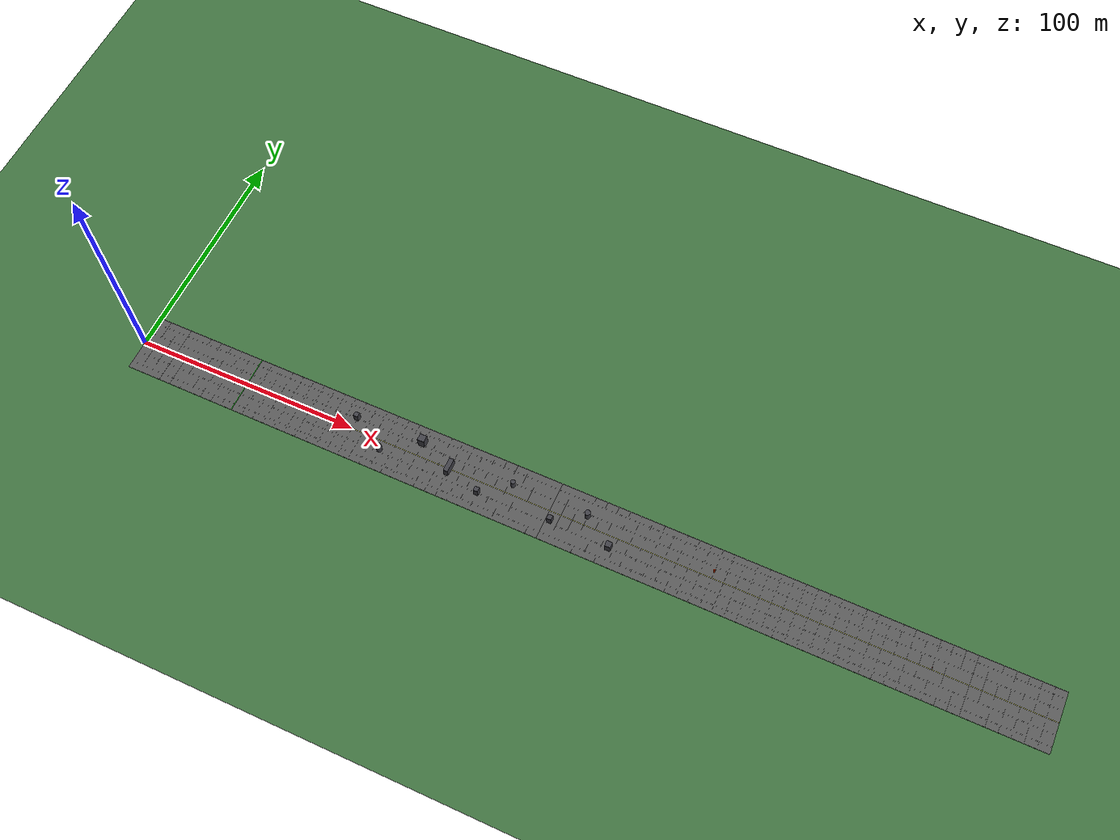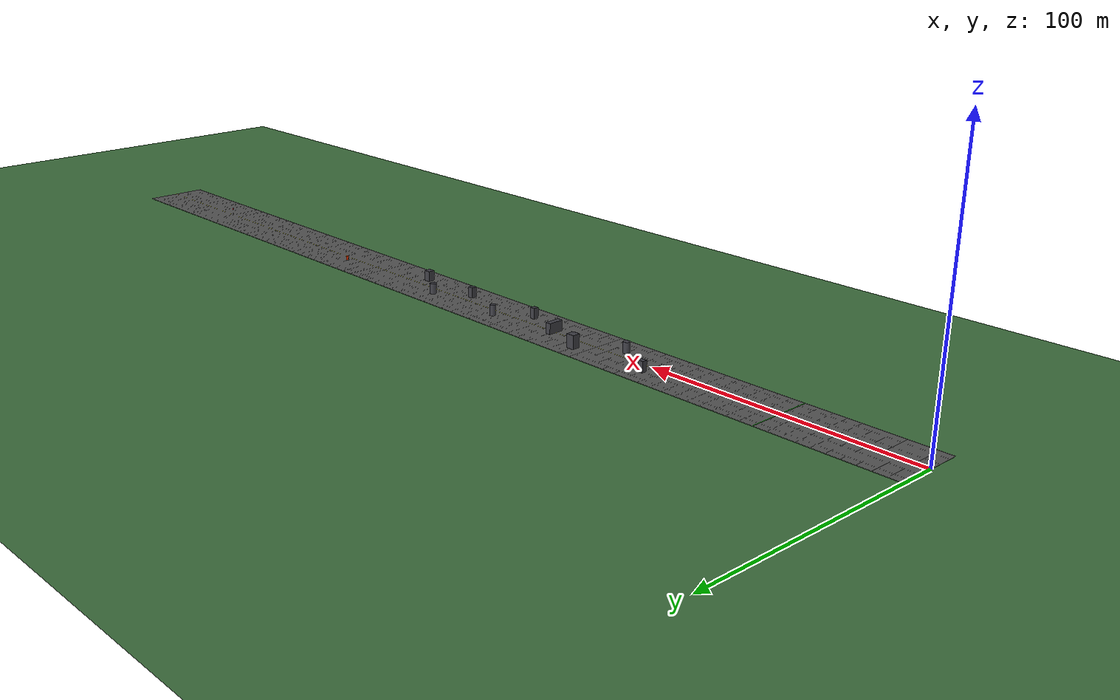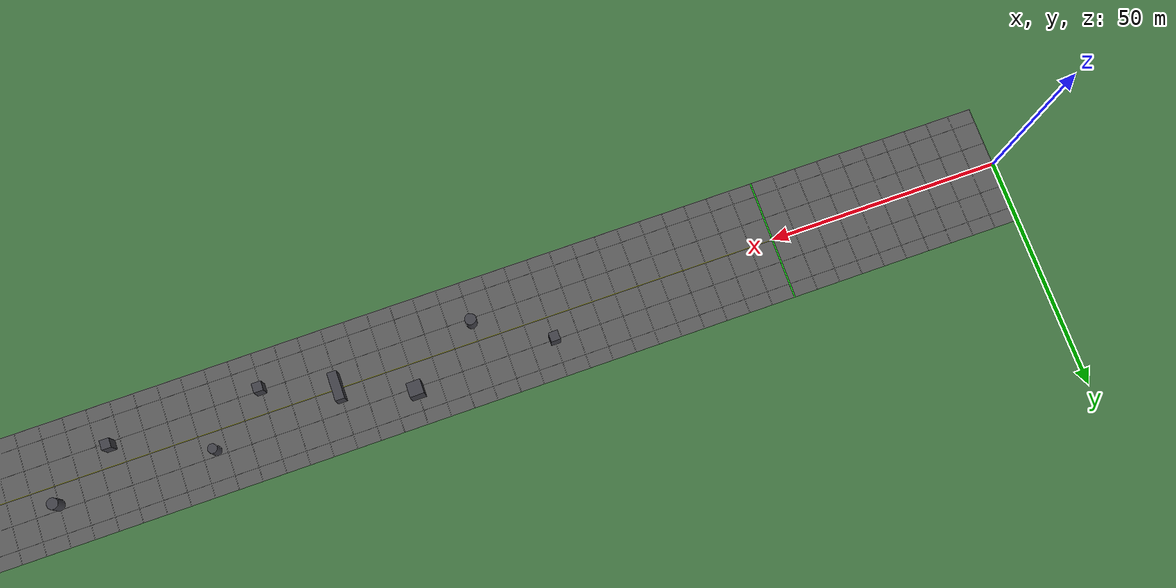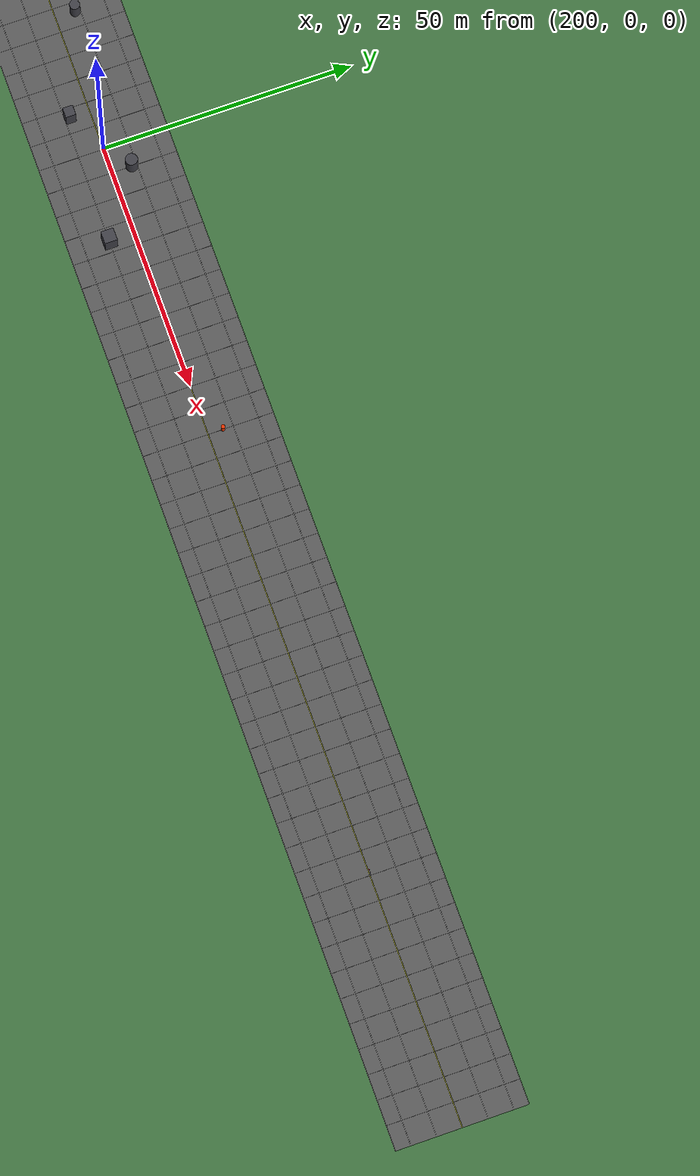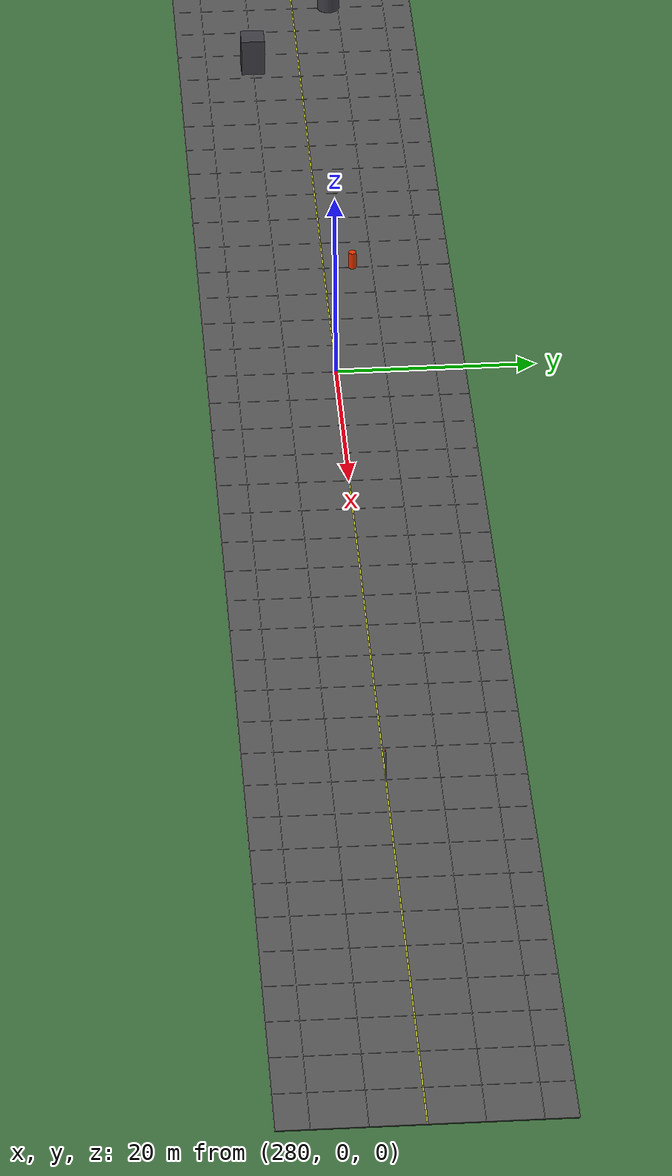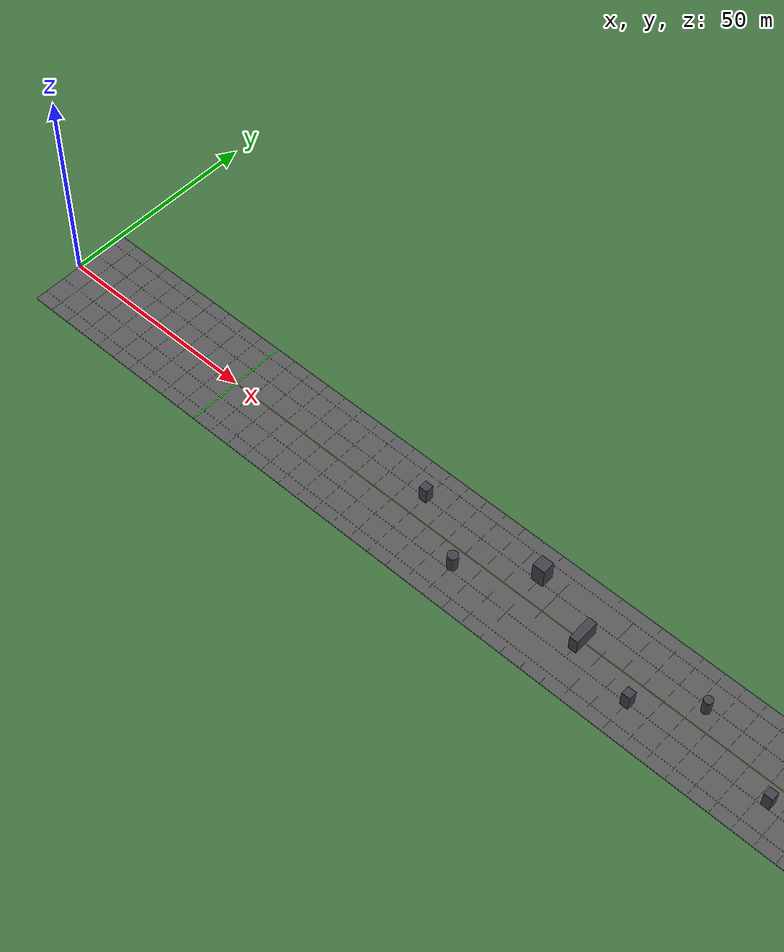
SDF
<?xml version="1.0"?>
<!-- POC RUNWAY WORLD  (GENERATED by scripts/generate_runway_world.py)      -->
<!-- 권원: POC 활주로 시나리오 26m x 400m, 5단계 (Requirement 1+2).         -->
<!-- Local ENU: x=drive 0..400m runway, y=width +/-13m (y=0                 -->
<!-- centreline=GO2 path). START LINE x=50 (green), goal flag (350,0) —     -->
<!-- drive 300 m; obstacles x[80,230],|y|<=11.                              -->
<!-- Header (physics/plugins/spherical_coordinates) reused from             -->
<!-- empty_world.sdf VERBATIM so GPS/NavSat/sensors behave identically.     -->
<!-- DO NOT hand-edit: regenerate via the generator.                        -->
<sdf version="1.8">
  <world name="poc_runway_world">

    <physics name="default_physics" type="ode">
      <max_step_size>0.008</max_step_size>
      <real_time_factor>1.0</real_time_factor>
      <real_time_update_rate>125</real_time_update_rate>
    </physics>

    <plugin filename="gz-sim-physics-system" name="gz::sim::systems::Physics" />
    <plugin filename="gz-sim-sensors-system" name="gz::sim::systems::Sensors">
      <render_engine>ogre2</render_engine>
    </plugin>
    <plugin filename="gz-sim-user-commands-system" name="gz::sim::systems::UserCommands" />
    <plugin filename="gz-sim-scene-broadcaster-system" name="gz::sim::systems::SceneBroadcaster" />
    <plugin filename="gz-sim-imu-system" name="gz::sim::systems::Imu" />
    <plugin filename="gz-sim-navsat-system" name="gz::sim::systems::NavSat" />

    <spherical_coordinates>
      <surface_model>EARTH_WGS84</surface_model>
      <world_frame_orientation>ENU</world_frame_orientation>
      <latitude_deg>36.61002559225</latitude_deg>
      <longitude_deg>127.28772570583</longitude_deg>
      <elevation>0.0</elevation>
      <heading_deg>0.0</heading_deg>
    </spherical_coordinates>

    <light type="directional" name="sun">
      <cast_shadows>true</cast_shadows>
      <pose>200 0 30 0 0 0</pose>
      <diffuse>0.9 0.9 0.9 1</diffuse>
      <specular>0.2 0.2 0.2 1</specular>
      <attenuation>
        <range>2000</range>
        <constant>0.9</constant>
        <linear>0.001</linear>
        <quadratic>0.0001</quadratic>
      </attenuation>
      <direction>-0.3 0.2 -0.9</direction>
    </light>

    <model name="ground_plane">
      <static>true</static>
      <pose>200 0 0 0 0 0</pose>
      <link name="link">
        <collision name="collision">
          <geometry><plane><normal>0 0 1</normal><size>400 26</size></plane></geometry>
          <surface><friction><ode><mu>1.0</mu><mu2>1.0</mu2></ode></friction></surface>
        </collision>
        <visual name="visual">
          <pose>0 0 -0.06 0 0 0</pose>
          <geometry><plane><normal>0 0 1</normal><size>400 26</size></plane></geometry>
          <material>
            <ambient>0.20 0.35 0.20 1</ambient>
            <diffuse>0.25 0.45 0.25 1</diffuse>
          </material>
        </visual>
      </link>
    </model>
    <!-- Runway strip 400 x 26 (top at z=0) -->
    <model name="runway_surface">
      <static>true</static>
      <pose>200.0 0.0 -0.05 0 0 0</pose>
      <link name="link">
        <visual name="vis"><geometry><box><size>400.0 26.0 0.1</size></box></geometry>
          <material><ambient>0.35 0.35 0.35 1</ambient><diffuse>0.35 0.35 0.35 1</diffuse></material></visual>
      </link>
    </model>
    <!-- 5 m grid: longitudinal (along x) + transverse (along y) -->
    <model name="grid_x_n13_0">
      <static>true</static>
      <pose>200.0 -13.0 0.01 0 0 0</pose>
      <link name="link">
        <visual name="vis"><geometry><box><size>400.0 0.05 0.02</size></box></geometry>
          <material><ambient>0.85 0.85 0.85 1</ambient><diffuse>0.85 0.85 0.85 1</diffuse></material></visual>
      </link>
    </model>
    <model name="grid_x_n10_0">
      <static>true</static>
      <pose>200.0 -10.0 0.01 0 0 0</pose>
      <link name="link">
        <visual name="vis"><geometry><box><size>400.0 0.05 0.02</size></box></geometry>
          <material><ambient>0.85 0.85 0.85 1</ambient><diffuse>0.85 0.85 0.85 1</diffuse></material></visual>
      </link>
    </model>
    <model name="grid_x_n5_0">
      <static>true</static>
      <pose>200.0 -5.0 0.01 0 0 0</pose>
      <link name="link">
        <visual name="vis"><geometry><box><size>400.0 0.05 0.02</size></box></geometry>
          <material><ambient>0.85 0.85 0.85 1</ambient><diffuse>0.85 0.85 0.85 1</diffuse></material></visual>
      </link>
    </model>
    <model name="grid_x_0_0">
      <static>true</static>
      <pose>200.0 0.0 0.01 0 0 0</pose>
      <link name="link">
        <visual name="vis"><geometry><box><size>400.0 0.12 0.02</size></box></geometry>
          <material><ambient>0.95 0.95 0.20 1</ambient><diffuse>0.95 0.95 0.20 1</diffuse></material></visual>
      </link>
    </model>
    <model name="grid_x_5_0">
      <static>true</static>
      <pose>200.0 5.0 0.01 0 0 0</pose>
      <link name="link">
        <visual name="vis"><geometry><box><size>400.0 0.05 0.02</size></box></geometry>
          <material><ambient>0.85 0.85 0.85 1</ambient><diffuse>0.85 0.85 0.85 1</diffuse></material></visual>
      </link>
    </model>
    <model name="grid_x_10_0">
      <static>true</static>
      <pose>200.0 10.0 0.01 0 0 0</pose>
      <link name="link">
        <visual name="vis"><geometry><box><size>400.0 0.05 0.02</size></box></geometry>
          <material><ambient>0.85 0.85 0.85 1</ambient><diffuse>0.85 0.85 0.85 1</diffuse></material></visual>
      </link>
    </model>
    <model name="grid_x_13_0">
      <static>true</static>
      <pose>200.0 13.0 0.01 0 0 0</pose>
      <link name="link">
        <visual name="vis"><geometry><box><size>400.0 0.05 0.02</size></box></geometry>
          <material><ambient>0.85 0.85 0.85 1</ambient><diffuse>0.85 0.85 0.85 1</diffuse></material></visual>
      </link>
    </model>
    <model name="grid_y_000">
      <static>true</static>
      <pose>0.0 0.0 0.01 0 0 0</pose>
      <link name="link">
        <visual name="vis"><geometry><box><size>0.05 26.0 0.02</size></box></geometry>
          <material><ambient>0.80 0.80 0.80 1</ambient><diffuse>0.80 0.80 0.80 1</diffuse></material></visual>
      </link>
    </model>
    <model name="grid_y_001">
      <static>true</static>
      <pose>5.0 0.0 0.01 0 0 0</pose>
      <link name="link">
        <visual name="vis"><geometry><box><size>0.05 26.0 0.02</size></box></geometry>
          <material><ambient>0.80 0.80 0.80 1</ambient><diffuse>0.80 0.80 0.80 1</diffuse></material></visual>
      </link>
    </model>
    <model name="grid_y_002">
      <static>true</static>
      <pose>10.0 0.0 0.01 0 0 0</pose>
      <link name="link">
        <visual name="vis"><geometry><box><size>0.05 26.0 0.02</size></box></geometry>
          <material><ambient>0.80 0.80 0.80 1</ambient><diffuse>0.80 0.80 0.80 1</diffuse></material></visual>
      </link>
    </model>
    <model name="grid_y_003">
      <static>true</static>
      <pose>15.0 0.0 0.01 0 0 0</pose>
      <link name="link">
        <visual name="vis"><geometry><box><size>0.05 26.0 0.02</size></box></geometry>
          <material><ambient>0.80 0.80 0.80 1</ambient><diffuse>0.80 0.80 0.80 1</diffuse></material></visual>
      </link>
    </model>
    <model name="grid_y_004">
      <static>true</static>
      <pose>20.0 0.0 0.01 0 0 0</pose>
      <link name="link">
        <visual name="vis"><geometry><box><size>0.05 26.0 0.02</size></box></geometry>
          <material><ambient>0.80 0.80 0.80 1</ambient><diffuse>0.80 0.80 0.80 1</diffuse></material></visual>
      </link>
    </model>
    <model name="grid_y_005">
      <static>true</static>
      <pose>25.0 0.0 0.01 0 0 0</pose>
      <link name="link">
        <visual name="vis"><geometry><box><size>0.05 26.0 0.02</size></box></geometry>
          <material><ambient>0.80 0.80 0.80 1</ambient><diffuse>0.80 0.80 0.80 1</diffuse></material></visual>
      </link>
    </model>
    <model name="grid_y_006">
      <static>true</static>
      <pose>30.0 0.0 0.01 0 0 0</pose>
      <link name="link">
        <visual name="vis"><geometry><box><size>0.05 26.0 0.02</size></box></geometry>
          <material><ambient>0.80 0.80 0.80 1</ambient><diffuse>0.80 0.80 0.80 1</diffuse></material></visual>
      </link>
    </model>
    <model name="grid_y_007">
      <static>true</static>
      <pose>35.0 0.0 0.01 0 0 0</pose>
      <link name="link">
        <visual name="vis"><geometry><box><size>0.05 26.0 0.02</size></box></geometry>
          <material><ambient>0.80 0.80 0.80 1</ambient><diffuse>0.80 0.80 0.80 1</diffuse></material></visual>
      </link>
    </model>
    <model name="grid_y_008">
      <static>true</static>
      <pose>40.0 0.0 0.01 0 0 0</pose>
      <link name="link">
        <visual name="vis"><geometry><box><size>0.05 26.0 0.02</size></box></geometry>
          <material><ambient>0.80 0.80 0.80 1</ambient><diffuse>0.80 0.80 0.80 1</diffuse></material></visual>
      </link>
    </model>
    <model name="grid_y_009">
      <static>true</static>
      <pose>45.0 0.0 0.01 0 0 0</pose>
      <link name="link">
        <visual name="vis"><geometry><box><size>0.05 26.0 0.02</size></box></geometry>
          <material><ambient>0.80 0.80 0.80 1</ambient><diffuse>0.80 0.80 0.80 1</diffuse></material></visual>
      </link>
    </model>
    <model name="grid_y_010">
      <static>true</static>
      <pose>50.0 0.0 0.01 0 0 0</pose>
      <link name="link">
        <visual name="vis"><geometry><box><size>0.05 26.0 0.02</size></box></geometry>
          <material><ambient>0.80 0.80 0.80 1</ambient><diffuse>0.80 0.80 0.80 1</diffuse></material></visual>
      </link>
    </model>
    <model name="grid_y_011">
      <static>true</static>
      <pose>55.0 0.0 0.01 0 0 0</pose>
      <link name="link">
        <visual name="vis"><geometry><box><size>0.05 26.0 0.02</size></box></geometry>
          <material><ambient>0.80 0.80 0.80 1</ambient><diffuse>0.80 0.80 0.80 1</diffuse></material></visual>
      </link>
    </model>
    <model name="grid_y_012">
      <static>true</static>
      <pose>60.0 0.0 0.01 0 0 0</pose>
      <link name="link">
        <visual name="vis"><geometry><box><size>0.05 26.0 0.02</size></box></geometry>
          <material><ambient>0.80 0.80 0.80 1</ambient><diffuse>0.80 0.80 0.80 1</diffuse></material></visual>
      </link>
    </model>
    <model name="grid_y_013">
      <static>true</static>
      <pose>65.0 0.0 0.01 0 0 0</pose>
      <link name="link">
        <visual name="vis"><geometry><box><size>0.05 26.0 0.02</size></box></geometry>
          <material><ambient>0.80 0.80 0.80 1</ambient><diffuse>0.80 0.80 0.80 1</diffuse></material></visual>
      </link>
    </model>
    <model name="grid_y_014">
      <static>true</static>
      <pose>70.0 0.0 0.01 0 0 0</pose>
      <link name="link">
        <visual name="vis"><geometry><box><size>0.05 26.0 0.02</size></box></geometry>
          <material><ambient>0.80 0.80 0.80 1</ambient><diffuse>0.80 0.80 0.80 1</diffuse></material></visual>
      </link>
    </model>
    <model name="grid_y_015">
      <static>true</static>
      <pose>75.0 0.0 0.01 0 0 0</pose>
      <link name="link">
        <visual name="vis"><geometry><box><size>0.05 26.0 0.02</size></box></geometry>
          <material><ambient>0.80 0.80 0.80 1</ambient><diffuse>0.80 0.80 0.80 1</diffuse></material></visual>
      </link>
    </model>
    <model name="grid_y_016">
      <static>true</static>
      <pose>80.0 0.0 0.01 0 0 0</pose>
      <link name="link">
        <visual name="vis"><geometry><box><size>0.05 26.0 0.02</size></box></geometry>
          <material><ambient>0.80 0.80 0.80 1</ambient><diffuse>0.80 0.80 0.80 1</diffuse></material></visual>
      </link>
    </model>
    <model name="grid_y_017">
      <static>true</static>
      <pose>85.0 0.0 0.01 0 0 0</pose>
      <link name="link">
        <visual name="vis"><geometry><box><size>0.05 26.0 0.02</size></box></geometry>
          <material><ambient>0.80 0.80 0.80 1</ambient><diffuse>0.80 0.80 0.80 1</diffuse></material></visual>
      </link>
    </model>
    <model name="grid_y_018">
      <static>true</static>
      <pose>90.0 0.0 0.01 0 0 0</pose>
      <link name="link">
        <visual name="vis"><geometry><box><size>0.05 26.0 0.02</size></box></geometry>
          <material><ambient>0.80 0.80 0.80 1</ambient><diffuse>0.80 0.80 0.80 1</diffuse></material></visual>
      </link>
    </model>
    <model name="grid_y_019">
      <static>true</static>
      <pose>95.0 0.0 0.01 0 0 0</pose>
      <link name="link">
        <visual name="vis"><geometry><box><size>0.05 26.0 0.02</size></box></geometry>
          <material><ambient>0.80 0.80 0.80 1</ambient><diffuse>0.80 0.80 0.80 1</diffuse></material></visual>
      </link>
    </model>
    <model name="grid_y_020">
      <static>true</static>
      <pose>100.0 0.0 0.01 0 0 0</pose>
      <link name="link">
        <visual name="vis"><geometry><box><size>0.05 26.0 0.02</size></box></geometry>
          <material><ambient>0.80 0.80 0.80 1</ambient><diffuse>0.80 0.80 0.80 1</diffuse></material></visual>
      </link>
    </model>
    <model name="grid_y_021">
      <static>true</static>
      <pose>105.0 0.0 0.01 0 0 0</pose>
      <link name="link">
        <visual name="vis"><geometry><box><size>0.05 26.0 0.02</size></box></geometry>
          <material><ambient>0.80 0.80 0.80 1</ambient><diffuse>0.80 0.80 0.80 1</diffuse></material></visual>
      </link>
    </model>
    <model name="grid_y_022">
      <static>true</static>
      <pose>110.0 0.0 0.01 0 0 0</pose>
      <link name="link">
        <visual name="vis"><geometry><box><size>0.05 26.0 0.02</size></box></geometry>
          <material><ambient>0.80 0.80 0.80 1</ambient><diffuse>0.80 0.80 0.80 1</diffuse></material></visual>
      </link>
    </model>
    <model name="grid_y_023">
      <static>true</static>
      <pose>115.0 0.0 0.01 0 0 0</pose>
      <link name="link">
        <visual name="vis"><geometry><box><size>0.05 26.0 0.02</size></box></geometry>
          <material><ambient>0.80 0.80 0.80 1</ambient><diffuse>0.80 0.80 0.80 1</diffuse></material></visual>
      </link>
    </model>
    <model name="grid_y_024">
      <static>true</static>
      <pose>120.0 0.0 0.01 0 0 0</pose>
      <link name="link">
        <visual name="vis"><geometry><box><size>0.05 26.0 0.02</size></box></geometry>
          <material><ambient>0.80 0.80 0.80 1</ambient><diffuse>0.80 0.80 0.80 1</diffuse></material></visual>
      </link>
    </model>
    <model name="grid_y_025">
      <static>true</static>
      <pose>125.0 0.0 0.01 0 0 0</pose>
      <link name="link">
        <visual name="vis"><geometry><box><size>0.05 26.0 0.02</size></box></geometry>
          <material><ambient>0.80 0.80 0.80 1</ambient><diffuse>0.80 0.80 0.80 1</diffuse></material></visual>
      </link>
    </model>
    <model name="grid_y_026">
      <static>true</static>
      <pose>130.0 0.0 0.01 0 0 0</pose>
      <link name="link">
        <visual name="vis"><geometry><box><size>0.05 26.0 0.02</size></box></geometry>
          <material><ambient>0.80 0.80 0.80 1</ambient><diffuse>0.80 0.80 0.80 1</diffuse></material></visual>
      </link>
    </model>
    <model name="grid_y_027">
      <static>true</static>
      <pose>135.0 0.0 0.01 0 0 0</pose>
      <link name="link">
        <visual name="vis"><geometry><box><size>0.05 26.0 0.02</size></box></geometry>
          <material><ambient>0.80 0.80 0.80 1</ambient><diffuse>0.80 0.80 0.80 1</diffuse></material></visual>
      </link>
    </model>
    <model name="grid_y_028">
      <static>true</static>
      <pose>140.0 0.0 0.01 0 0 0</pose>
      <link name="link">
        <visual name="vis"><geometry><box><size>0.05 26.0 0.02</size></box></geometry>
          <material><ambient>0.80 0.80 0.80 1</ambient><diffuse>0.80 0.80 0.80 1</diffuse></material></visual>
      </link>
    </model>
    <model name="grid_y_029">
      <static>true</static>
      <pose>145.0 0.0 0.01 0 0 0</pose>
      <link name="link">
        <visual name="vis"><geometry><box><size>0.05 26.0 0.02</size></box></geometry>
          <material><ambient>0.80 0.80 0.80 1</ambient><diffuse>0.80 0.80 0.80 1</diffuse></material></visual>
      </link>
    </model>
    <model name="grid_y_030">
      <static>true</static>
      <pose>150.0 0.0 0.01 0 0 0</pose>
      <link name="link">
        <visual name="vis"><geometry><box><size>0.05 26.0 0.02</size></box></geometry>
          <material><ambient>0.80 0.80 0.80 1</ambient><diffuse>0.80 0.80 0.80 1</diffuse></material></visual>
      </link>
    </model>
    <model name="grid_y_031">
      <static>true</static>
      <pose>155.0 0.0 0.01 0 0 0</pose>
      <link name="link">
        <visual name="vis"><geometry><box><size>0.05 26.0 0.02</size></box></geometry>
          <material><ambient>0.80 0.80 0.80 1</ambient><diffuse>0.80 0.80 0.80 1</diffuse></material></visual>
      </link>
    </model>
    <model name="grid_y_032">
      <static>true</static>
      <pose>160.0 0.0 0.01 0 0 0</pose>
      <link name="link">
        <visual name="vis"><geometry><box><size>0.05 26.0 0.02</size></box></geometry>
          <material><ambient>0.80 0.80 0.80 1</ambient><diffuse>0.80 0.80 0.80 1</diffuse></material></visual>
      </link>
    </model>
    <model name="grid_y_033">
      <static>true</static>
      <pose>165.0 0.0 0.01 0 0 0</pose>
      <link name="link">
        <visual name="vis"><geometry><box><size>0.05 26.0 0.02</size></box></geometry>
          <material><ambient>0.80 0.80 0.80 1</ambient><diffuse>0.80 0.80 0.80 1</diffuse></material></visual>
      </link>
    </model>
    <model name="grid_y_034">
      <static>true</static>
      <pose>170.0 0.0 0.01 0 0 0</pose>
      <link name="link">
        <visual name="vis"><geometry><box><size>0.05 26.0 0.02</size></box></geometry>
          <material><ambient>0.80 0.80 0.80 1</ambient><diffuse>0.80 0.80 0.80 1</diffuse></material></visual>
      </link>
    </model>
    <model name="grid_y_035">
      <static>true</static>
      <pose>175.0 0.0 0.01 0 0 0</pose>
      <link name="link">
        <visual name="vis"><geometry><box><size>0.05 26.0 0.02</size></box></geometry>
          <material><ambient>0.80 0.80 0.80 1</ambient><diffuse>0.80 0.80 0.80 1</diffuse></material></visual>
      </link>
    </model>
    <model name="grid_y_036">
      <static>true</static>
      <pose>180.0 0.0 0.01 0 0 0</pose>
      <link name="link">
        <visual name="vis"><geometry><box><size>0.05 26.0 0.02</size></box></geometry>
          <material><ambient>0.80 0.80 0.80 1</ambient><diffuse>0.80 0.80 0.80 1</diffuse></material></visual>
      </link>
    </model>
    <model name="grid_y_037">
      <static>true</static>
      <pose>185.0 0.0 0.01 0 0 0</pose>
      <link name="link">
        <visual name="vis"><geometry><box><size>0.05 26.0 0.02</size></box></geometry>
          <material><ambient>0.80 0.80 0.80 1</ambient><diffuse>0.80 0.80 0.80 1</diffuse></material></visual>
      </link>
    </model>
    <model name="grid_y_038">
      <static>true</static>
      <pose>190.0 0.0 0.01 0 0 0</pose>
      <link name="link">
        <visual name="vis"><geometry><box><size>0.05 26.0 0.02</size></box></geometry>
          <material><ambient>0.80 0.80 0.80 1</ambient><diffuse>0.80 0.80 0.80 1</diffuse></material></visual>
      </link>
    </model>
    <model name="grid_y_039">
      <static>true</static>
      <pose>195.0 0.0 0.01 0 0 0</pose>
      <link name="link">
        <visual name="vis"><geometry><box><size>0.05 26.0 0.02</size></box></geometry>
          <material><ambient>0.80 0.80 0.80 1</ambient><diffuse>0.80 0.80 0.80 1</diffuse></material></visual>
      </link>
    </model>
    <model name="grid_y_040">
      <static>true</static>
      <pose>200.0 0.0 0.01 0 0 0</pose>
      <link name="link">
        <visual name="vis"><geometry><box><size>0.05 26.0 0.02</size></box></geometry>
          <material><ambient>0.80 0.80 0.80 1</ambient><diffuse>0.80 0.80 0.80 1</diffuse></material></visual>
      </link>
    </model>
    <model name="grid_y_041">
      <static>true</static>
      <pose>205.0 0.0 0.01 0 0 0</pose>
      <link name="link">
        <visual name="vis"><geometry><box><size>0.05 26.0 0.02</size></box></geometry>
          <material><ambient>0.80 0.80 0.80 1</ambient><diffuse>0.80 0.80 0.80 1</diffuse></material></visual>
      </link>
    </model>
    <model name="grid_y_042">
      <static>true</static>
      <pose>210.0 0.0 0.01 0 0 0</pose>
      <link name="link">
        <visual name="vis"><geometry><box><size>0.05 26.0 0.02</size></box></geometry>
          <material><ambient>0.80 0.80 0.80 1</ambient><diffuse>0.80 0.80 0.80 1</diffuse></material></visual>
      </link>
    </model>
    <model name="grid_y_043">
      <static>true</static>
      <pose>215.0 0.0 0.01 0 0 0</pose>
      <link name="link">
        <visual name="vis"><geometry><box><size>0.05 26.0 0.02</size></box></geometry>
          <material><ambient>0.80 0.80 0.80 1</ambient><diffuse>0.80 0.80 0.80 1</diffuse></material></visual>
      </link>
    </model>
    <model name="grid_y_044">
      <static>true</static>
      <pose>220.0 0.0 0.01 0 0 0</pose>
      <link name="link">
        <visual name="vis"><geometry><box><size>0.05 26.0 0.02</size></box></geometry>
          <material><ambient>0.80 0.80 0.80 1</ambient><diffuse>0.80 0.80 0.80 1</diffuse></material></visual>
      </link>
    </model>
    <model name="grid_y_045">
      <static>true</static>
      <pose>225.0 0.0 0.01 0 0 0</pose>
      <link name="link">
        <visual name="vis"><geometry><box><size>0.05 26.0 0.02</size></box></geometry>
          <material><ambient>0.80 0.80 0.80 1</ambient><diffuse>0.80 0.80 0.80 1</diffuse></material></visual>
      </link>
    </model>
    <model name="grid_y_046">
      <static>true</static>
      <pose>230.0 0.0 0.01 0 0 0</pose>
      <link name="link">
        <visual name="vis"><geometry><box><size>0.05 26.0 0.02</size></box></geometry>
          <material><ambient>0.80 0.80 0.80 1</ambient><diffuse>0.80 0.80 0.80 1</diffuse></material></visual>
      </link>
    </model>
    <model name="grid_y_047">
      <static>true</static>
      <pose>235.0 0.0 0.01 0 0 0</pose>
      <link name="link">
        <visual name="vis"><geometry><box><size>0.05 26.0 0.02</size></box></geometry>
          <material><ambient>0.80 0.80 0.80 1</ambient><diffuse>0.80 0.80 0.80 1</diffuse></material></visual>
      </link>
    </model>
    <model name="grid_y_048">
      <static>true</static>
      <pose>240.0 0.0 0.01 0 0 0</pose>
      <link name="link">
        <visual name="vis"><geometry><box><size>0.05 26.0 0.02</size></box></geometry>
          <material><ambient>0.80 0.80 0.80 1</ambient><diffuse>0.80 0.80 0.80 1</diffuse></material></visual>
      </link>
    </model>
    <model name="grid_y_049">
      <static>true</static>
      <pose>245.0 0.0 0.01 0 0 0</pose>
      <link name="link">
        <visual name="vis"><geometry><box><size>0.05 26.0 0.02</size></box></geometry>
          <material><ambient>0.80 0.80 0.80 1</ambient><diffuse>0.80 0.80 0.80 1</diffuse></material></visual>
      </link>
    </model>
    <model name="grid_y_050">
      <static>true</static>
      <pose>250.0 0.0 0.01 0 0 0</pose>
      <link name="link">
        <visual name="vis"><geometry><box><size>0.05 26.0 0.02</size></box></geometry>
          <material><ambient>0.80 0.80 0.80 1</ambient><diffuse>0.80 0.80 0.80 1</diffuse></material></visual>
      </link>
    </model>
    <model name="grid_y_051">
      <static>true</static>
      <pose>255.0 0.0 0.01 0 0 0</pose>
      <link name="link">
        <visual name="vis"><geometry><box><size>0.05 26.0 0.02</size></box></geometry>
          <material><ambient>0.80 0.80 0.80 1</ambient><diffuse>0.80 0.80 0.80 1</diffuse></material></visual>
      </link>
    </model>
    <model name="grid_y_052">
      <static>true</static>
      <pose>260.0 0.0 0.01 0 0 0</pose>
      <link name="link">
        <visual name="vis"><geometry><box><size>0.05 26.0 0.02</size></box></geometry>
          <material><ambient>0.80 0.80 0.80 1</ambient><diffuse>0.80 0.80 0.80 1</diffuse></material></visual>
      </link>
    </model>
    <model name="grid_y_053">
      <static>true</static>
      <pose>265.0 0.0 0.01 0 0 0</pose>
      <link name="link">
        <visual name="vis"><geometry><box><size>0.05 26.0 0.02</size></box></geometry>
          <material><ambient>0.80 0.80 0.80 1</ambient><diffuse>0.80 0.80 0.80 1</diffuse></material></visual>
      </link>
    </model>
    <model name="grid_y_054">
      <static>true</static>
      <pose>270.0 0.0 0.01 0 0 0</pose>
      <link name="link">
        <visual name="vis"><geometry><box><size>0.05 26.0 0.02</size></box></geometry>
          <material><ambient>0.80 0.80 0.80 1</ambient><diffuse>0.80 0.80 0.80 1</diffuse></material></visual>
      </link>
    </model>
    <model name="grid_y_055">
      <static>true</static>
      <pose>275.0 0.0 0.01 0 0 0</pose>
      <link name="link">
        <visual name="vis"><geometry><box><size>0.05 26.0 0.02</size></box></geometry>
          <material><ambient>0.80 0.80 0.80 1</ambient><diffuse>0.80 0.80 0.80 1</diffuse></material></visual>
      </link>
    </model>
    <model name="grid_y_056">
      <static>true</static>
      <pose>280.0 0.0 0.01 0 0 0</pose>
      <link name="link">
        <visual name="vis"><geometry><box><size>0.05 26.0 0.02</size></box></geometry>
          <material><ambient>0.80 0.80 0.80 1</ambient><diffuse>0.80 0.80 0.80 1</diffuse></material></visual>
      </link>
    </model>
    <model name="grid_y_057">
      <static>true</static>
      <pose>285.0 0.0 0.01 0 0 0</pose>
      <link name="link">
        <visual name="vis"><geometry><box><size>0.05 26.0 0.02</size></box></geometry>
          <material><ambient>0.80 0.80 0.80 1</ambient><diffuse>0.80 0.80 0.80 1</diffuse></material></visual>
      </link>
    </model>
    <model name="grid_y_058">
      <static>true</static>
      <pose>290.0 0.0 0.01 0 0 0</pose>
      <link name="link">
        <visual name="vis"><geometry><box><size>0.05 26.0 0.02</size></box></geometry>
          <material><ambient>0.80 0.80 0.80 1</ambient><diffuse>0.80 0.80 0.80 1</diffuse></material></visual>
      </link>
    </model>
    <model name="grid_y_059">
      <static>true</static>
      <pose>295.0 0.0 0.01 0 0 0</pose>
      <link name="link">
        <visual name="vis"><geometry><box><size>0.05 26.0 0.02</size></box></geometry>
          <material><ambient>0.80 0.80 0.80 1</ambient><diffuse>0.80 0.80 0.80 1</diffuse></material></visual>
      </link>
    </model>
    <model name="grid_y_060">
      <static>true</static>
      <pose>300.0 0.0 0.01 0 0 0</pose>
      <link name="link">
        <visual name="vis"><geometry><box><size>0.05 26.0 0.02</size></box></geometry>
          <material><ambient>0.80 0.80 0.80 1</ambient><diffuse>0.80 0.80 0.80 1</diffuse></material></visual>
      </link>
    </model>
    <model name="grid_y_061">
      <static>true</static>
      <pose>305.0 0.0 0.01 0 0 0</pose>
      <link name="link">
        <visual name="vis"><geometry><box><size>0.05 26.0 0.02</size></box></geometry>
          <material><ambient>0.80 0.80 0.80 1</ambient><diffuse>0.80 0.80 0.80 1</diffuse></material></visual>
      </link>
    </model>
    <model name="grid_y_062">
      <static>true</static>
      <pose>310.0 0.0 0.01 0 0 0</pose>
      <link name="link">
        <visual name="vis"><geometry><box><size>0.05 26.0 0.02</size></box></geometry>
          <material><ambient>0.80 0.80 0.80 1</ambient><diffuse>0.80 0.80 0.80 1</diffuse></material></visual>
      </link>
    </model>
    <model name="grid_y_063">
      <static>true</static>
      <pose>315.0 0.0 0.01 0 0 0</pose>
      <link name="link">
        <visual name="vis"><geometry><box><size>0.05 26.0 0.02</size></box></geometry>
          <material><ambient>0.80 0.80 0.80 1</ambient><diffuse>0.80 0.80 0.80 1</diffuse></material></visual>
      </link>
    </model>
    <model name="grid_y_064">
      <static>true</static>
      <pose>320.0 0.0 0.01 0 0 0</pose>
      <link name="link">
        <visual name="vis"><geometry><box><size>0.05 26.0 0.02</size></box></geometry>
          <material><ambient>0.80 0.80 0.80 1</ambient><diffuse>0.80 0.80 0.80 1</diffuse></material></visual>
      </link>
    </model>
    <model name="grid_y_065">
      <static>true</static>
      <pose>325.0 0.0 0.01 0 0 0</pose>
      <link name="link">
        <visual name="vis"><geometry><box><size>0.05 26.0 0.02</size></box></geometry>
          <material><ambient>0.80 0.80 0.80 1</ambient><diffuse>0.80 0.80 0.80 1</diffuse></material></visual>
      </link>
    </model>
    <model name="grid_y_066">
      <static>true</static>
      <pose>330.0 0.0 0.01 0 0 0</pose>
      <link name="link">
        <visual name="vis"><geometry><box><size>0.05 26.0 0.02</size></box></geometry>
          <material><ambient>0.80 0.80 0.80 1</ambient><diffuse>0.80 0.80 0.80 1</diffuse></material></visual>
      </link>
    </model>
    <model name="grid_y_067">
      <static>true</static>
      <pose>335.0 0.0 0.01 0 0 0</pose>
      <link name="link">
        <visual name="vis"><geometry><box><size>0.05 26.0 0.02</size></box></geometry>
          <material><ambient>0.80 0.80 0.80 1</ambient><diffuse>0.80 0.80 0.80 1</diffuse></material></visual>
      </link>
    </model>
    <model name="grid_y_068">
      <static>true</static>
      <pose>340.0 0.0 0.01 0 0 0</pose>
      <link name="link">
        <visual name="vis"><geometry><box><size>0.05 26.0 0.02</size></box></geometry>
          <material><ambient>0.80 0.80 0.80 1</ambient><diffuse>0.80 0.80 0.80 1</diffuse></material></visual>
      </link>
    </model>
    <model name="grid_y_069">
      <static>true</static>
      <pose>345.0 0.0 0.01 0 0 0</pose>
      <link name="link">
        <visual name="vis"><geometry><box><size>0.05 26.0 0.02</size></box></geometry>
          <material><ambient>0.80 0.80 0.80 1</ambient><diffuse>0.80 0.80 0.80 1</diffuse></material></visual>
      </link>
    </model>
    <model name="grid_y_070">
      <static>true</static>
      <pose>350.0 0.0 0.01 0 0 0</pose>
      <link name="link">
        <visual name="vis"><geometry><box><size>0.05 26.0 0.02</size></box></geometry>
          <material><ambient>0.80 0.80 0.80 1</ambient><diffuse>0.80 0.80 0.80 1</diffuse></material></visual>
      </link>
    </model>
    <model name="grid_y_071">
      <static>true</static>
      <pose>355.0 0.0 0.01 0 0 0</pose>
      <link name="link">
        <visual name="vis"><geometry><box><size>0.05 26.0 0.02</size></box></geometry>
          <material><ambient>0.80 0.80 0.80 1</ambient><diffuse>0.80 0.80 0.80 1</diffuse></material></visual>
      </link>
    </model>
    <model name="grid_y_072">
      <static>true</static>
      <pose>360.0 0.0 0.01 0 0 0</pose>
      <link name="link">
        <visual name="vis"><geometry><box><size>0.05 26.0 0.02</size></box></geometry>
          <material><ambient>0.80 0.80 0.80 1</ambient><diffuse>0.80 0.80 0.80 1</diffuse></material></visual>
      </link>
    </model>
    <model name="grid_y_073">
      <static>true</static>
      <pose>365.0 0.0 0.01 0 0 0</pose>
      <link name="link">
        <visual name="vis"><geometry><box><size>0.05 26.0 0.02</size></box></geometry>
          <material><ambient>0.80 0.80 0.80 1</ambient><diffuse>0.80 0.80 0.80 1</diffuse></material></visual>
      </link>
    </model>
    <model name="grid_y_074">
      <static>true</static>
      <pose>370.0 0.0 0.01 0 0 0</pose>
      <link name="link">
        <visual name="vis"><geometry><box><size>0.05 26.0 0.02</size></box></geometry>
          <material><ambient>0.80 0.80 0.80 1</ambient><diffuse>0.80 0.80 0.80 1</diffuse></material></visual>
      </link>
    </model>
    <model name="grid_y_075">
      <static>true</static>
      <pose>375.0 0.0 0.01 0 0 0</pose>
      <link name="link">
        <visual name="vis"><geometry><box><size>0.05 26.0 0.02</size></box></geometry>
          <material><ambient>0.80 0.80 0.80 1</ambient><diffuse>0.80 0.80 0.80 1</diffuse></material></visual>
      </link>
    </model>
    <model name="grid_y_076">
      <static>true</static>
      <pose>380.0 0.0 0.01 0 0 0</pose>
      <link name="link">
        <visual name="vis"><geometry><box><size>0.05 26.0 0.02</size></box></geometry>
          <material><ambient>0.80 0.80 0.80 1</ambient><diffuse>0.80 0.80 0.80 1</diffuse></material></visual>
      </link>
    </model>
    <model name="grid_y_077">
      <static>true</static>
      <pose>385.0 0.0 0.01 0 0 0</pose>
      <link name="link">
        <visual name="vis"><geometry><box><size>0.05 26.0 0.02</size></box></geometry>
          <material><ambient>0.80 0.80 0.80 1</ambient><diffuse>0.80 0.80 0.80 1</diffuse></material></visual>
      </link>
    </model>
    <model name="grid_y_078">
      <static>true</static>
      <pose>390.0 0.0 0.01 0 0 0</pose>
      <link name="link">
        <visual name="vis"><geometry><box><size>0.05 26.0 0.02</size></box></geometry>
          <material><ambient>0.80 0.80 0.80 1</ambient><diffuse>0.80 0.80 0.80 1</diffuse></material></visual>
      </link>
    </model>
    <model name="grid_y_079">
      <static>true</static>
      <pose>395.0 0.0 0.01 0 0 0</pose>
      <link name="link">
        <visual name="vis"><geometry><box><size>0.05 26.0 0.02</size></box></geometry>
          <material><ambient>0.80 0.80 0.80 1</ambient><diffuse>0.80 0.80 0.80 1</diffuse></material></visual>
      </link>
    </model>
    <model name="grid_y_080">
      <static>true</static>
      <pose>400.0 0.0 0.01 0 0 0</pose>
      <link name="link">
        <visual name="vis"><geometry><box><size>0.05 26.0 0.02</size></box></geometry>
          <material><ambient>0.80 0.80 0.80 1</ambient><diffuse>0.80 0.80 0.80 1</diffuse></material></visual>
      </link>
    </model>
    <!-- Start line at x=50 (green, visual only) -->
    <model name="start_line">
      <static>true</static>
      <pose>50.0 0.0 0.011 0 0 0</pose>
      <link name="link">
        <visual name="vis"><geometry><box><size>0.3 26.0 0.02</size></box></geometry>
          <material><ambient>0.10 0.90 0.10 1</ambient><diffuse>0.10 0.90 0.10 1</diffuse></material></visual>
      </link>
    </model>
    <!-- Goal flag at (350,0): pole + red flag (mission goal T) -->
    <model name="goal_flag_pole">
      <static>true</static>
      <pose>350.0 0.0 1.5 0 0 0</pose>
      <link name="link">
        <collision name="col"><geometry><cylinder><radius>0.05</radius><length>3.0</length></cylinder></geometry></collision>
        <visual name="vis"><geometry><cylinder><radius>0.05</radius><length>3.0</length></cylinder></geometry>
          <material><ambient>0.9 0.9 0.9 1</ambient><diffuse>0.9 0.9 0.9 1</diffuse></material></visual>
      </link>
    </model>
    <model name="goal_flag">
      <static>true</static>
      <pose>349.59 0.0 2.6 0 0 0</pose>
      <link name="link">
        <visual name="vis"><geometry><box><size>0.8 0.02 0.5</size></box></geometry>
          <material><ambient>1.0 0.0 0.0 1</ambient><diffuse>1.0 0.0 0.0 1</diffuse></material></visual>
      </link>
    </model>
    <model name="obstacle_box_1">
      <static>true</static>
      <pose>100.0 5.0 2.0 0 0 0</pose>
      <link name="link">
        <collision name="col"><geometry><box><size>2.0 2.0 4.0</size></box></geometry></collision>
        <visual name="vis"><geometry><box><size>2.0 2.0 4.0</size></box></geometry>
          <material><ambient>0.25 0.25 0.28 1</ambient><diffuse>0.25 0.25 0.28 1</diffuse></material></visual>
      </link>
    </model>
    <model name="obstacle_cyl_1">
      <static>true</static>
      <pose>115.0 -4.0 2.0 0 0 0</pose>
      <link name="link">
        <collision name="col"><geometry><cylinder><radius>1.2</radius><length>4.0</length></cylinder></geometry></collision>
        <visual name="vis"><geometry><cylinder><radius>1.2</radius><length>4.0</length></cylinder></geometry>
          <material><ambient>0.25 0.25 0.28 1</ambient><diffuse>0.25 0.25 0.28 1</diffuse></material></visual>
      </link>
    </model>
    <model name="obstacle_box_2">
      <static>true</static>
      <pose>130.0 6.0 2.5 0 0 0</pose>
      <link name="link">
        <collision name="col"><geometry><box><size>3.0 3.0 5.0</size></box></geometry></collision>
        <visual name="vis"><geometry><box><size>3.0 3.0 5.0</size></box></geometry>
          <material><ambient>0.25 0.25 0.28 1</ambient><diffuse>0.25 0.25 0.28 1</diffuse></material></visual>
      </link>
    </model>
    <model name="obstacle_wall_1">
      <static>true</static>
      <pose>145.0 0.0 2.0 0 0 0</pose>
      <link name="link">
        <collision name="col"><geometry><box><size>2.0 6.0 4.0</size></box></geometry></collision>
        <visual name="vis"><geometry><box><size>2.0 6.0 4.0</size></box></geometry>
          <material><ambient>0.25 0.25 0.28 1</ambient><diffuse>0.25 0.25 0.28 1</diffuse></material></visual>
      </link>
    </model>
    <model name="obstacle_box_3">
      <static>true</static>
      <pose>160.0 -5.0 2.0 0 0 0</pose>
      <link name="link">
        <collision name="col"><geometry><box><size>2.0 2.0 4.0</size></box></geometry></collision>
        <visual name="vis"><geometry><box><size>2.0 2.0 4.0</size></box></geometry>
          <material><ambient>0.25 0.25 0.28 1</ambient><diffuse>0.25 0.25 0.28 1</diffuse></material></visual>
      </link>
    </model>
    <model name="obstacle_cyl_2">
      <static>true</static>
      <pose>172.0 4.0 2.0 0 0 0</pose>
      <link name="link">
        <collision name="col"><geometry><cylinder><radius>1.0</radius><length>4.0</length></cylinder></geometry></collision>
        <visual name="vis"><geometry><cylinder><radius>1.0</radius><length>4.0</length></cylinder></geometry>
          <material><ambient>0.25 0.25 0.28 1</ambient><diffuse>0.25 0.25 0.28 1</diffuse></material></visual>
      </link>
    </model>
    <model name="obstacle_box_4">
      <static>true</static>
      <pose>192.0 -4.0 2.0 0 0 0</pose>
      <link name="link">
        <collision name="col"><geometry><box><size>2.0 2.0 4.0</size></box></geometry></collision>
        <visual name="vis"><geometry><box><size>2.0 2.0 4.0</size></box></geometry>
          <material><ambient>0.25 0.25 0.28 1</ambient><diffuse>0.25 0.25 0.28 1</diffuse></material></visual>
      </link>
    </model>
    <model name="obstacle_cyl_3">
      <static>true</static>
      <pose>205.0 4.0 2.0 0 0 0</pose>
      <link name="link">
        <collision name="col"><geometry><cylinder><radius>1.2</radius><length>4.0</length></cylinder></geometry></collision>
        <visual name="vis"><geometry><cylinder><radius>1.2</radius><length>4.0</length></cylinder></geometry>
          <material><ambient>0.25 0.25 0.28 1</ambient><diffuse>0.25 0.25 0.28 1</diffuse></material></visual>
      </link>
    </model>
    <model name="obstacle_box_5">
      <static>true</static>
      <pose>218.0 -5.0 2.0 0 0 0</pose>
      <link name="link">
        <collision name="col"><geometry><box><size>2.5 2.5 4.0</size></box></geometry></collision>
        <visual name="vis"><geometry><box><size>2.5 2.5 4.0</size></box></geometry>
          <material><ambient>0.25 0.25 0.28 1</ambient><diffuse>0.25 0.25 0.28 1</diffuse></material></visual>
      </link>
    </model>
    <!-- Stage-4 enemy-contact marker (visual only) -->
    <model name="enemy_marker">
      <static>true</static>
      <pose>260.0 3.0 0.9 0 0 0</pose>
      <link name="link">
        <collision name="col"><geometry><cylinder><radius>0.4</radius><length>1.8</length></cylinder></geometry></collision>
        <visual name="vis"><geometry><cylinder><radius>0.4</radius><length>1.8</length></cylinder></geometry>
          <material><ambient>0.9 0.2 0.0 1</ambient><diffuse>0.9 0.2 0.0 1</diffuse></material></visual>
      </link>
    </model>
  </world>
</sdf>
